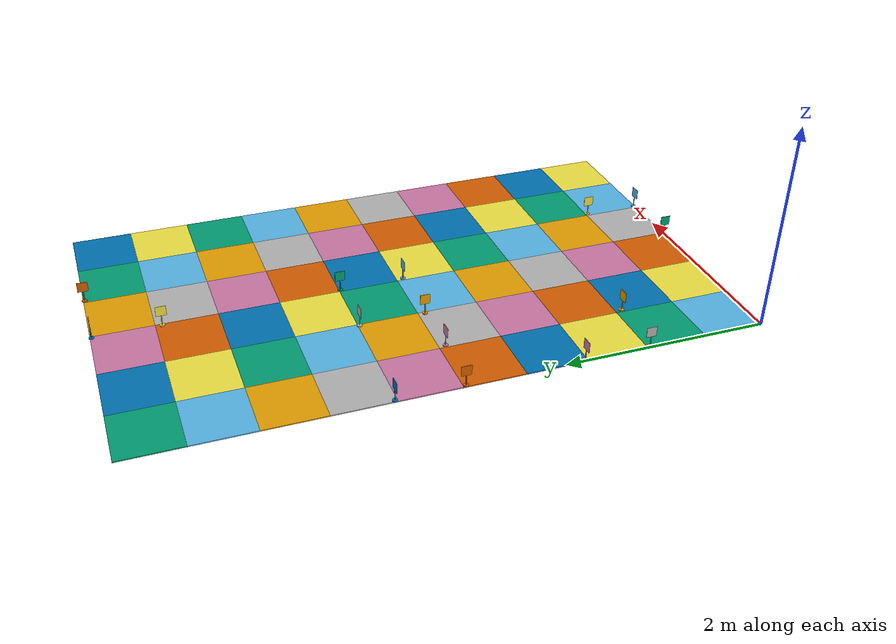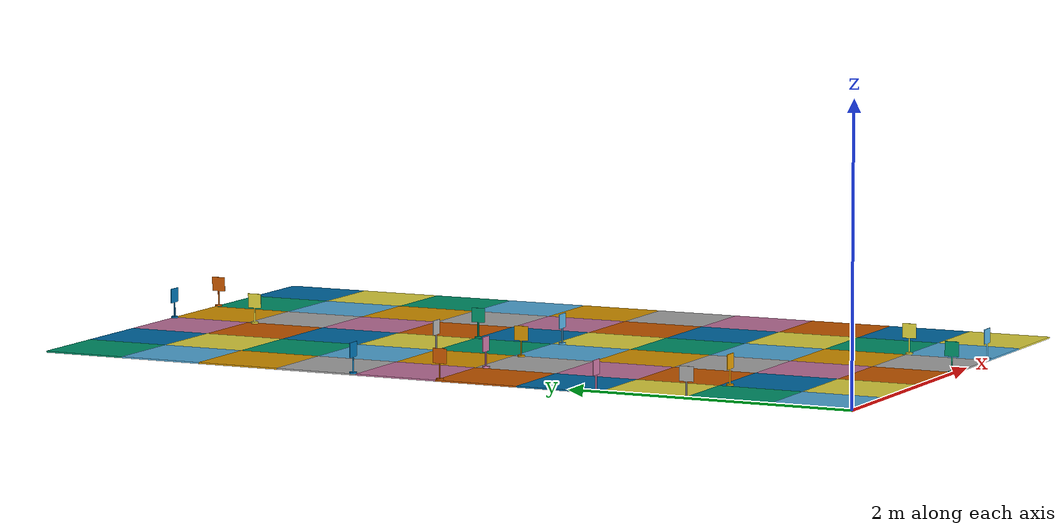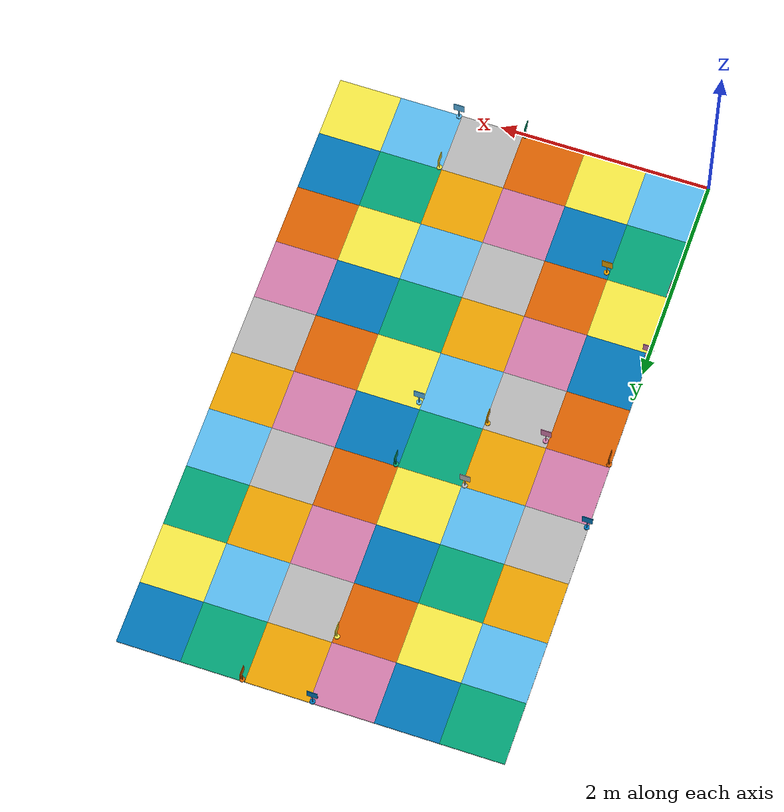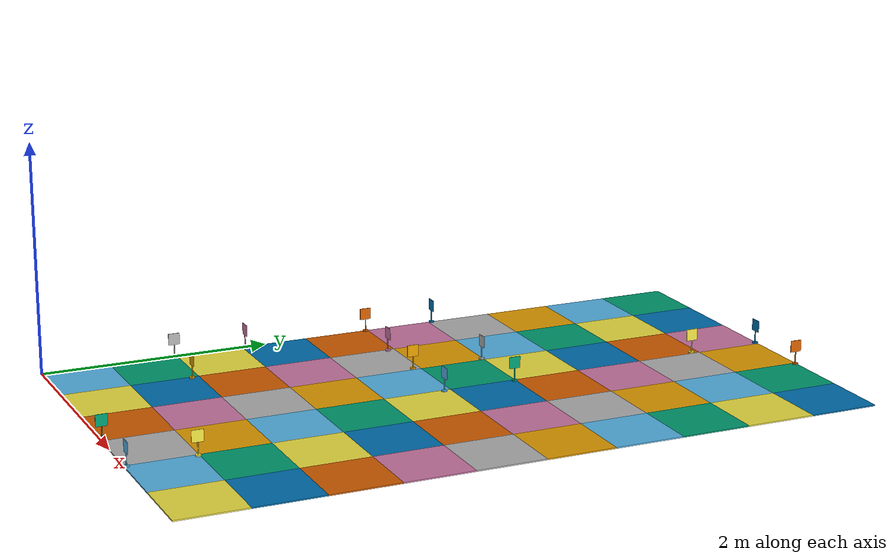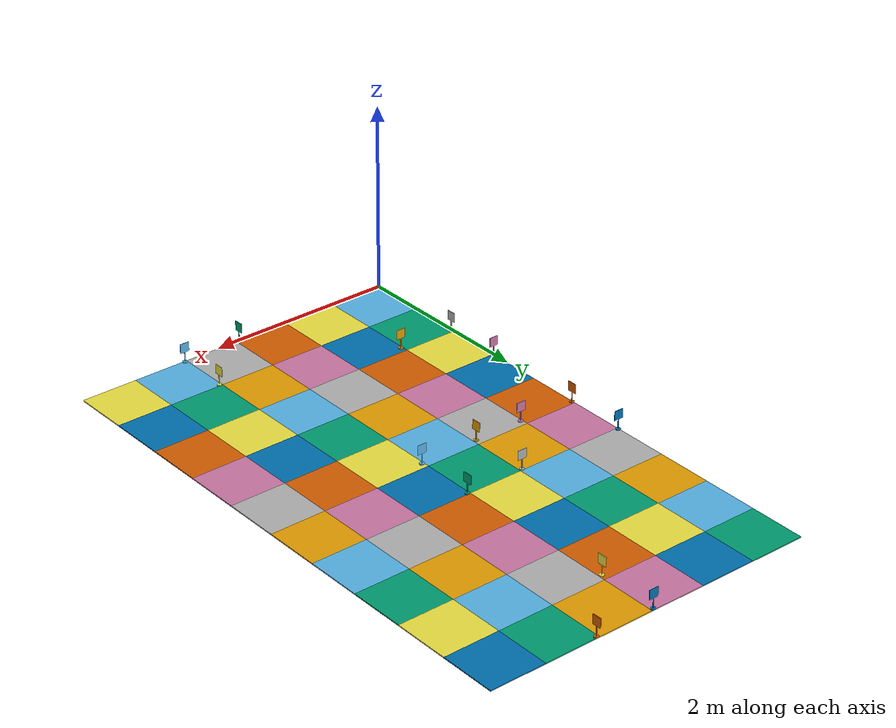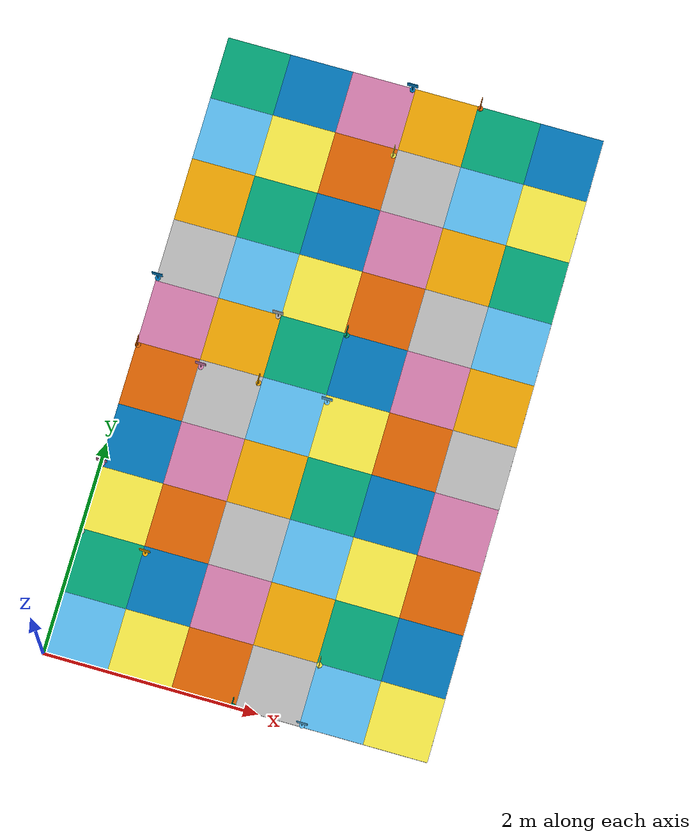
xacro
<?xml version="1.0"?>

<robot name="duckietown" xmlns:xacro="http://www.ros.org/wiki/xacro">

    <!-- Parameters -->
    <xacro:property name="tile_width" value="0.595" />
    <xacro:property name="pos_0" value="0.04 0" />
    <xacro:property name="pos_1" value="0 0.04" />
    <xacro:property name="pos_2" value="-0.04 0" />
    <xacro:property name="pos_3" value="0 -0.04" />

    <!-- Include the tile and tag macros -->
    <xacro:include filename="$(find duckietown_description)/urdf/macros.urdf.xacro" />

    <!-- The world frame is at the lower left corner of duckietown-->
    <link name="world" />

    <!-- Describe the tiles -->
    <xacro:tile x="0" y="0" type="turn" rotation="270" />
    <xacro:tile x="0" y="1" type="straight" rotation="90" />
    <xacro:tile x="0" y="2" type="3way" rotation="270" />
    <xacro:tile x="0" y="3" type="straight" rotation="90" />
    <xacro:tile x="0" y="4" type="straight" rotation="90" />
    <xacro:tile x="0" y="5" type="3way" rotation="270" />
    <xacro:tile x="0" y="6" type="straight" rotation="90" />
    <xacro:tile x="0" y="7" type="straight" rotation="90" />
    <xacro:tile x="0" y="8" type="straight" rotation="90" />
    <xacro:tile x="0" y="9" type="turn" rotation="180" />

    <xacro:tile x="1" y="0" type="straight" rotation="0" />
    <xacro:tile x="1" y="1" type="empty" rotation="0" />
    <xacro:tile x="1" y="2" type="straight" rotation="0" />
    <xacro:tile x="1" y="3" type="empty" rotation="0" />
    <xacro:tile x="1" y="4" type="empty" rotation="0" />
    <xacro:tile x="1" y="5" type="straight" rotation="0" />
    <xacro:tile x="1" y="6" type="empty" rotation="0" />
    <xacro:tile x="1" y="7" type="empty" rotation="0" />
    <xacro:tile x="1" y="8" type="empty" rotation="0" />
    <xacro:tile x="1" y="9" type="straight" rotation="0" />

    <xacro:tile x="2" y="0" type="straight" rotation="0" />
    <xacro:tile x="2" y="1" type="empty" rotation="0" />
    <xacro:tile x="2" y="2" type="turn" rotation="0" />
    <xacro:tile x="2" y="3" type="straight" rotation="90" />
    <xacro:tile x="2" y="4" type="straight" rotation="90" />
    <xacro:tile x="2" y="5" type="4way" rotation="0" />
    <xacro:tile x="2" y="6" type="straight" rotation="90" />
    <xacro:tile x="2" y="7" type="turn" rotation="180" />
    <xacro:tile x="2" y="8" type="empty" rotation="0" />
    <xacro:tile x="2" y="9" type="straight" rotation="0" />

    <xacro:tile x="3" y="0" type="3way" rotation="0" />
    <xacro:tile x="3" y="1" type="straight" rotation="90" />
    <xacro:tile x="3" y="2" type="straight" rotation="90" />
    <xacro:tile x="3" y="3" type="turn" rotation="180" />
    <xacro:tile x="3" y="4" type="empty" rotation="0" />
    <xacro:tile x="3" y="5" type="straight" rotation="0" />
    <xacro:tile x="3" y="6" type="empty" rotation="0" />
    <xacro:tile x="3" y="7" type="turn" rotation="0" />
    <xacro:tile x="3" y="8" type="straight" rotation="90" />
    <xacro:tile x="3" y="9" type="3way" rotation="180" />

    <xacro:tile x="4" y="0" type="straight" rotation="0" />
    <xacro:tile x="4" y="1" type="empty" rotation="0" />
    <xacro:tile x="4" y="2" type="empty" rotation="0" />
    <xacro:tile x="4" y="3" type="straight" rotation="0" />
    <xacro:tile x="4" y="4" type="empty" rotation="0" />
    <xacro:tile x="4" y="5" type="turn" rotation="0" />
    <xacro:tile x="4" y="6" type="straight" rotation="90" />
    <xacro:tile x="4" y="7" type="straight" rotation="90" />
    <xacro:tile x="4" y="8" type="turn" rotation="180" />
    <xacro:tile x="4" y="9" type="straight" rotation="0" />

    <xacro:tile x="5" y="0" type="turn" rotation="0" />
    <xacro:tile x="5" y="1" type="straight" rotation="90" />
    <xacro:tile x="5" y="2" type="straight" rotation="90" />
    <xacro:tile x="5" y="3" type="turn" rotation="90" />
    <xacro:tile x="5" y="4" type="empty" rotation="0" />
    <xacro:tile x="5" y="5" type="empty" rotation="0" />
    <xacro:tile x="5" y="6" type="empty" rotation="0" />
    <xacro:tile x="5" y="7" type="empty" rotation="0" />
    <xacro:tile x="5" y="8" type="turn" rotation="0" />
    <xacro:tile x="5" y="9" type="turn" rotation="90" />

    <!-- Empty border tiles -->
    <xacro:tile x="6" y="0" visible="false" />
    <xacro:tile x="6" y="1" visible="false" />
    <xacro:tile x="6" y="2" visible="false" />
    <xacro:tile x="6" y="3" visible="false" />
    <xacro:tile x="6" y="4" visible="false" />
    <xacro:tile x="6" y="5" visible="false" />
    <xacro:tile x="6" y="6" visible="false" />
    <xacro:tile x="6" y="7" visible="false" />
    <xacro:tile x="6" y="8" visible="false" />
    <xacro:tile x="6" y="9" visible="false" />
    <xacro:tile x="6" y="10" visible="false" />
    <xacro:tile x="5" y="10" visible="false" />
    <xacro:tile x="4" y="10" visible="false" />
    <xacro:tile x="3" y="10" visible="false" />
    <xacro:tile x="2" y="10" visible="false" />
    <xacro:tile x="1" y="10" visible="false" />
    <xacro:tile x="0" y="10" visible="false" />

    <!-- Describe the tags -->
    <xacro:tag id="100" x="0" y="3" pos="${pos_0}" rotation="270" />
    <xacro:tag id="101" x="0" y="2" pos="${pos_0}" rotation="0" />
    <xacro:tag id="102" x="1" y="2" pos="${pos_3}" rotation="90" />

    <xacro:tag id="103" x="4" y="0" pos="${pos_1}" rotation="90" />
    <xacro:tag id="104" x="3" y="0" pos="${pos_1}" rotation="0" />
    <xacro:tag id="105" x="4" y="1" pos="${pos_3}" rotation="180" />

    <xacro:tag id="106" x="0" y="6" pos="${pos_0}" rotation="270" />
    <xacro:tag id="107" x="0" y="5" pos="${pos_0}" rotation="0" />
    <xacro:tag id="108" x="1" y="5" pos="${pos_3}" rotation="90" />

    <xacro:tag id="109" x="2" y="6" pos="${pos_3}" rotation="270" />
    <xacro:tag id="110" x="2" y="5" pos="${pos_3}" rotation="0" />
    <xacro:tag id="111" x="3" y="5" pos="${pos_3}" rotation="90" />
    <xacro:tag id="112" x="3" y="6" pos="${pos_3}" rotation="180" />

    <xacro:tag id="113" x="3" y="9" pos="${pos_3}" rotation="0" />
    <xacro:tag id="114" x="3" y="10" pos="${pos_3}" rotation="270" />
    <xacro:tag id="115" x="4" y="10" pos="${pos_3}" rotation="180" />
</robot>

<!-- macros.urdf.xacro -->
<robot name="macros" xmlns:xacro="http://www.ros.org/wiki/xacro">
    <xacro:property name="pi" value="3.14159265359" />
    <xacro:property name="tile_thickness" value="0.01" />

    <!-- Defines a tile link and joint-->
    <xacro:macro name="tile" params="x y type:=empty rotation:=0 visible:=true">
        <link name="tile_${x}_${y}">
            <xacro:if value="${visible}" >
                <visual>
                    <origin xyz="${tile_width/2} ${tile_width/2} ${-tile_thickness/2}" rpy="0 0 ${rotation * pi/180}"/>
                    <geometry>
                        <mesh filename="package://duckietown_description/urdf/meshes/${type}.dae" />
                    </geometry>
                </visual>
            </xacro:if>
        </link>

        <joint name="world_to_tile_${x}_${y}" type="fixed">
            <parent link="world" />
            <child link="tile_${x}_${y}" />
            <origin xyz="${tile_width * x} ${tile_width * y} 0" />
        </joint>
    </xacro:macro>

    <!-- Defines an april tag link and joint-->
    <xacro:macro name="tag" params="id x y pos rotation">
        <link name="tag_${id}">
            <visual>
                <origin xyz="-0.0254 -0.0254 0" />
                <geometry>
                    <mesh filename="package://duckietown_description/urdf/meshes/tags/tag_${id}.dae" />
                </geometry>
            </visual>
        </link>

        <joint name="world_to_tag_${id}" type="fixed">
            <parent link="tile_${x}_${y}" />
            <child link="tag_${id}" />
            <origin xyz="${pos} 0" rpy="0 0 ${rotation * pi/180}"/>
        </joint>
    </xacro:macro>
</robot>
